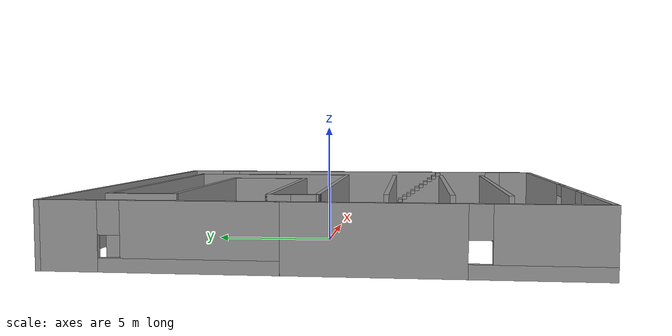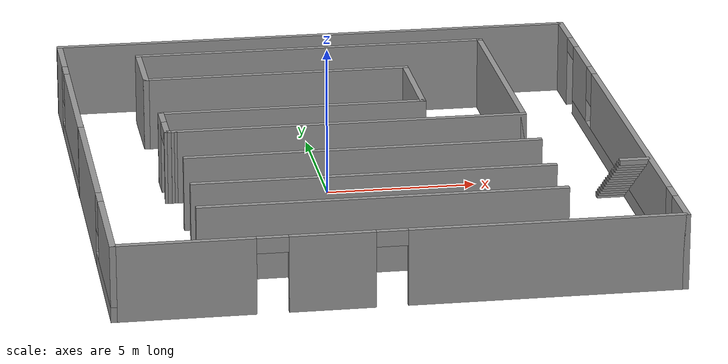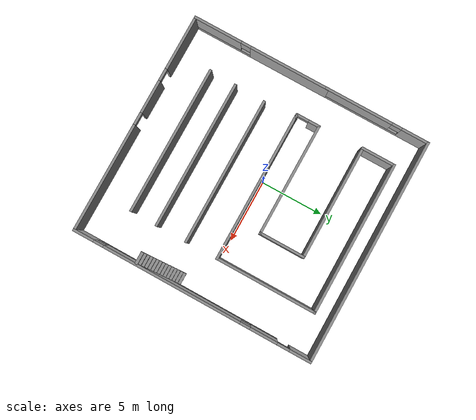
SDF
<?xml version='1.0'?>
<sdf version='1.4'>
  <model name='whouse'>
    <link name='Stairs_0'>
      <visual name='Stairs_0_Visual_0'>
        <pose>9.30541 -1.82192 0.083333 0 -0 0</pose>
        <geometry>
          <box>
            <size>1 0.233335 0.166668</size>
          </box>
        </geometry>
        <material>
          <script>
            <uri>file://media/materials/scripts/gazebo.material</uri>
            <name>Gazebo/Grey</name>
          </script>
        </material>
      </visual>
      <collision name='Stairs_0_Collision_0'>
        <geometry>
          <box>
            <size>1 0.233335 0.166668</size>
          </box>
        </geometry>
        <pose>9.30541 -1.82192 0.083333 0 -0 0</pose>
      </collision>
      <visual name='Stairs_0_Visual_1'>
        <pose>9.30541 -2.05525 0.25 0 -0 0</pose>
        <geometry>
          <box>
            <size>1 0.233335 0.166668</size>
          </box>
        </geometry>
        <material>
          <script>
            <uri>file://media/materials/scripts/gazebo.material</uri>
            <name>Gazebo/Grey</name>
          </script>
        </material>
      </visual>
      <collision name='Stairs_0_Collision_1'>
        <geometry>
          <box>
            <size>1 0.233335 0.166668</size>
          </box>
        </geometry>
        <pose>9.30541 -2.05525 0.25 0 -0 0</pose>
      </collision>
      <visual name='Stairs_0_Visual_2'>
        <pose>9.30541 -2.28858 0.416667 0 -0 0</pose>
        <geometry>
          <box>
            <size>1 0.233335 0.166668</size>
          </box>
        </geometry>
        <material>
          <script>
            <uri>file://media/materials/scripts/gazebo.material</uri>
            <name>Gazebo/Grey</name>
          </script>
        </material>
      </visual>
      <collision name='Stairs_0_Collision_2'>
        <geometry>
          <box>
            <size>1 0.233335 0.166668</size>
          </box>
        </geometry>
        <pose>9.30541 -2.28858 0.416667 0 -0 0</pose>
      </collision>
      <visual name='Stairs_0_Visual_3'>
        <pose>9.30541 -2.52192 0.583333 0 -0 0</pose>
        <geometry>
          <box>
            <size>1 0.233335 0.166668</size>
          </box>
        </geometry>
        <material>
          <script>
            <uri>file://media/materials/scripts/gazebo.material</uri>
            <name>Gazebo/Grey</name>
          </script>
        </material>
      </visual>
      <collision name='Stairs_0_Collision_3'>
        <geometry>
          <box>
            <size>1 0.233335 0.166668</size>
          </box>
        </geometry>
        <pose>9.30541 -2.52192 0.583333 0 -0 0</pose>
      </collision>
      <visual name='Stairs_0_Visual_4'>
        <pose>9.30541 -2.75525 0.75 0 -0 0</pose>
        <geometry>
          <box>
            <size>1 0.233335 0.166668</size>
          </box>
        </geometry>
        <material>
          <script>
            <uri>file://media/materials/scripts/gazebo.material</uri>
            <name>Gazebo/Grey</name>
          </script>
        </material>
      </visual>
      <collision name='Stairs_0_Collision_4'>
        <geometry>
          <box>
            <size>1 0.233335 0.166668</size>
          </box>
        </geometry>
        <pose>9.30541 -2.75525 0.75 0 -0 0</pose>
      </collision>
      <visual name='Stairs_0_Visual_5'>
        <pose>9.30541 -2.98858 0.916667 0 -0 0</pose>
        <geometry>
          <box>
            <size>1 0.233335 0.166668</size>
          </box>
        </geometry>
        <material>
          <script>
            <uri>file://media/materials/scripts/gazebo.material</uri>
            <name>Gazebo/Grey</name>
          </script>
        </material>
      </visual>
      <collision name='Stairs_0_Collision_5'>
        <geometry>
          <box>
            <size>1 0.233335 0.166668</size>
          </box>
        </geometry>
        <pose>9.30541 -2.98858 0.916667 0 -0 0</pose>
      </collision>
      <visual name='Stairs_0_Visual_6'>
        <pose>9.30541 -3.22192 1.08333 0 -0 0</pose>
        <geometry>
          <box>
            <size>1 0.233335 0.166668</size>
          </box>
        </geometry>
        <material>
          <script>
            <uri>file://media/materials/scripts/gazebo.material</uri>
            <name>Gazebo/Grey</name>
          </script>
        </material>
      </visual>
      <collision name='Stairs_0_Collision_6'>
        <geometry>
          <box>
            <size>1 0.233335 0.166668</size>
          </box>
        </geometry>
        <pose>9.30541 -3.22192 1.08333 0 -0 0</pose>
      </collision>
      <visual name='Stairs_0_Visual_7'>
        <pose>9.30541 -3.45525 1.25 0 -0 0</pose>
        <geometry>
          <box>
            <size>1 0.233335 0.166668</size>
          </box>
        </geometry>
        <material>
          <script>
            <uri>file://media/materials/scripts/gazebo.material</uri>
            <name>Gazebo/Grey</name>
          </script>
        </material>
      </visual>
      <collision name='Stairs_0_Collision_7'>
        <geometry>
          <box>
            <size>1 0.233335 0.166668</size>
          </box>
        </geometry>
        <pose>9.30541 -3.45525 1.25 0 -0 0</pose>
      </collision>
      <visual name='Stairs_0_Visual_8'>
        <pose>9.30541 -3.68858 1.41667 0 -0 0</pose>
        <geometry>
          <box>
            <size>1 0.233335 0.166668</size>
          </box>
        </geometry>
        <material>
          <script>
            <uri>file://media/materials/scripts/gazebo.material</uri>
            <name>Gazebo/Grey</name>
          </script>
        </material>
      </visual>
      <collision name='Stairs_0_Collision_8'>
        <geometry>
          <box>
            <size>1 0.233335 0.166668</size>
          </box>
        </geometry>
        <pose>9.30541 -3.68858 1.41667 0 -0 0</pose>
      </collision>
      <visual name='Stairs_0_Visual_9'>
        <pose>9.30541 -3.92192 1.58333 0 -0 0</pose>
        <geometry>
          <box>
            <size>1 0.233335 0.166668</size>
          </box>
        </geometry>
        <material>
          <script>
            <uri>file://media/materials/scripts/gazebo.material</uri>
            <name>Gazebo/Grey</name>
          </script>
        </material>
      </visual>
      <collision name='Stairs_0_Collision_9'>
        <geometry>
          <box>
            <size>1 0.233335 0.166668</size>
          </box>
        </geometry>
        <pose>9.30541 -3.92192 1.58333 0 -0 0</pose>
      </collision>
      <visual name='Stairs_0_Visual_10'>
        <pose>9.30541 -4.15525 1.75 0 -0 0</pose>
        <geometry>
          <box>
            <size>1 0.233335 0.166668</size>
          </box>
        </geometry>
        <material>
          <script>
            <uri>file://media/materials/scripts/gazebo.material</uri>
            <name>Gazebo/Grey</name>
          </script>
        </material>
      </visual>
      <collision name='Stairs_0_Collision_10'>
        <geometry>
          <box>
            <size>1 0.233335 0.166668</size>
          </box>
        </geometry>
        <pose>9.30541 -4.15525 1.75 0 -0 0</pose>
      </collision>
      <visual name='Stairs_0_Visual_11'>
        <pose>9.30541 -4.38858 1.91667 0 -0 0</pose>
        <geometry>
          <box>
            <size>1 0.233335 0.166668</size>
          </box>
        </geometry>
        <material>
          <script>
            <uri>file://media/materials/scripts/gazebo.material</uri>
            <name>Gazebo/Grey</name>
          </script>
        </material>
      </visual>
      <collision name='Stairs_0_Collision_11'>
        <geometry>
          <box>
            <size>1 0.233335 0.166668</size>
          </box>
        </geometry>
        <pose>9.30541 -4.38858 1.91667 0 -0 0</pose>
      </collision>
      <visual name='Stairs_0_Visual_12'>
        <pose>9.30541 -4.62192 2.08333 0 -0 0</pose>
        <geometry>
          <box>
            <size>1 0.233335 0.166668</size>
          </box>
        </geometry>
        <material>
          <script>
            <uri>file://media/materials/scripts/gazebo.material</uri>
            <name>Gazebo/Grey</name>
          </script>
        </material>
      </visual>
      <collision name='Stairs_0_Collision_12'>
        <geometry>
          <box>
            <size>1 0.233335 0.166668</size>
          </box>
        </geometry>
        <pose>9.30541 -4.62192 2.08333 0 -0 0</pose>
      </collision>
      <visual name='Stairs_0_Visual_13'>
        <pose>9.30541 -4.85525 2.25 0 -0 0</pose>
        <geometry>
          <box>
            <size>1 0.233335 0.166668</size>
          </box>
        </geometry>
        <material>
          <script>
            <uri>file://media/materials/scripts/gazebo.material</uri>
            <name>Gazebo/Grey</name>
          </script>
        </material>
      </visual>
      <collision name='Stairs_0_Collision_13'>
        <geometry>
          <box>
            <size>1 0.233335 0.166668</size>
          </box>
        </geometry>
        <pose>9.30541 -4.85525 2.25 0 -0 0</pose>
      </collision>
      <visual name='Stairs_0_Visual_14'>
        <pose>9.30541 -5.08858 2.41667 0 -0 0</pose>
        <geometry>
          <box>
            <size>1 0.233335 0.166668</size>
          </box>
        </geometry>
        <material>
          <script>
            <uri>file://media/materials/scripts/gazebo.material</uri>
            <name>Gazebo/Grey</name>
          </script>
        </material>
      </visual>
      <collision name='Stairs_0_Collision_14'>
        <geometry>
          <box>
            <size>1 0.233335 0.166668</size>
          </box>
        </geometry>
        <pose>9.30541 -5.08858 2.41667 0 -0 0</pose>
      </collision>
    </link>
    <link name='Wall_24'>
      <collision name='Wall_24_Collision'>
        <geometry>
          <box>
            <size>11.9322 0.2 2.5</size>
          </box>
        </geometry>
        <pose>0 0 1.25 0 -0 0</pose>
      </collision>
      <visual name='Wall_24_Visual'>
        <pose>0 0 1.25 0 -0 0</pose>
        <geometry>
          <box>
            <size>11.9322 0.2 2.5</size>
          </box>
        </geometry>
        <material>
          <script>
            <uri>file://media/materials/scripts/gazebo.material</uri>
            <name>Gazebo/Grey</name>
          </script>
        </material>
      </visual>
      <velocity_decay>
        <linear>0</linear>
        <angular>0</angular>
      </velocity_decay>
      <pose>0.724621 -7.3064 0 0 -0 0</pose>
    </link>
    <link name='Wall_26'>
      <collision name='Wall_26_Collision'>
        <geometry>
          <box>
            <size>11.9041 0.2 2.5</size>
          </box>
        </geometry>
        <pose>0 0 1.25 0 -0 0</pose>
      </collision>
      <visual name='Wall_26_Visual'>
        <pose>0 0 1.25 0 -0 0</pose>
        <geometry>
          <box>
            <size>11.9041 0.2 2.5</size>
          </box>
        </geometry>
        <material>
          <script>
            <uri>file://media/materials/scripts/gazebo.material</uri>
            <name>Gazebo/Grey</name>
          </script>
        </material>
      </visual>
      <velocity_decay>
        <linear>0</linear>
        <angular>0</angular>
      </velocity_decay>
      <pose>0.776272 -5.17892 0 0 -0 0</pose>
    </link>
    <link name='Wall_28'>
      <collision name='Wall_28_Collision'>
        <geometry>
          <box>
            <size>11.8509 0.2 2.5</size>
          </box>
        </geometry>
        <pose>0 0 1.25 0 -0 0</pose>
      </collision>
      <visual name='Wall_28_Visual'>
        <pose>0 0 1.25 0 -0 0</pose>
        <geometry>
          <box>
            <size>11.8509 0.2 2.5</size>
          </box>
        </geometry>
        <material>
          <script>
            <uri>file://media/materials/scripts/gazebo.material</uri>
            <name>Gazebo/Grey</name>
          </script>
        </material>
      </visual>
      <velocity_decay>
        <linear>0</linear>
        <angular>0</angular>
      </velocity_decay>
      <pose>0.802873 -2.7317 0 0 -0 0</pose>
    </link>
    <link name='Wall_3'>
      <pose>-8.13557 -4.65606 0 0 0 -1.5708</pose>
      <visual name='Wall_3_Visual_0'>
        <pose>-2.38773 0 1.25 0 -0 0</pose>
        <geometry>
          <box>
            <size>6.54185 0.2 2.5</size>
          </box>
        </geometry>
        <material>
          <script>
            <uri>file://media/materials/scripts/gazebo.material</uri>
            <name>Gazebo/Grey</name>
          </script>
        </material>
      </visual>
      <collision name='Wall_3_Collision_0'>
        <geometry>
          <box>
            <size>6.54185 0.2 2.5</size>
          </box>
        </geometry>
        <pose>-2.38773 0 1.25 0 -0 0</pose>
      </collision>
      <visual name='Wall_3_Visual_1'>
        <pose>3.27092 0 0.25 0 -0 0</pose>
        <geometry>
          <box>
            <size>4.77546 0.2 0.5</size>
          </box>
        </geometry>
        <material>
          <script>
            <uri>file://media/materials/scripts/gazebo.material</uri>
            <name>Gazebo/Grey</name>
          </script>
        </material>
      </visual>
      <collision name='Wall_3_Collision_1'>
        <geometry>
          <box>
            <size>4.77546 0.2 0.5</size>
          </box>
        </geometry>
        <pose>3.27092 0 0.25 0 -0 0</pose>
      </collision>
      <visual name='Wall_3_Visual_2'>
        <pose>3.67092 0 1.5 0 -0 0</pose>
        <geometry>
          <box>
            <size>3.97546 0.2 2</size>
          </box>
        </geometry>
        <material>
          <script>
            <uri>file://media/materials/scripts/gazebo.material</uri>
            <name>Gazebo/Grey</name>
          </script>
        </material>
      </visual>
      <collision name='Wall_3_Collision_2'>
        <geometry>
          <box>
            <size>3.97546 0.2 2</size>
          </box>
        </geometry>
        <pose>3.67092 0 1.5 0 -0 0</pose>
      </collision>
      <visual name='Wall_3_Visual_3'>
        <pose>1.2832 0 1.9 0 -0 0</pose>
        <geometry>
          <box>
            <size>0.8 0.2 1.2</size>
          </box>
        </geometry>
        <material>
          <script>
            <uri>file://media/materials/scripts/gazebo.material</uri>
            <name>Gazebo/Grey</name>
          </script>
        </material>
      </visual>
      <collision name='Wall_3_Collision_3'>
        <geometry>
          <box>
            <size>0.8 0.2 1.2</size>
          </box>
        </geometry>
        <pose>1.2832 0 1.9 0 -0 0</pose>
      </collision>
    </link>
    <link name='Wall_4'>
      <pose>0.844676 -10.2147 0 0 -0 0</pose>
      <visual name='Wall_4_Visual_0'>
        <pose>-6.81576 0 1.25 0 -0 0</pose>
        <geometry>
          <box>
            <size>4.52898 0.2 2.5</size>
          </box>
        </geometry>
        <material>
          <script>
            <uri>file://media/materials/scripts/gazebo.material</uri>
            <name>Gazebo/Grey</name>
          </script>
        </material>
      </visual>
      <collision name='Wall_4_Collision_0'>
        <geometry>
          <box>
            <size>4.52898 0.2 2.5</size>
          </box>
        </geometry>
        <pose>-6.81576 0 1.25 0 -0 0</pose>
      </collision>
      <visual name='Wall_4_Visual_1'>
        <pose>-2.18826 0 1.25 0 -0 0</pose>
        <geometry>
          <box>
            <size>2.726 0.2 2.5</size>
          </box>
        </geometry>
        <material>
          <script>
            <uri>file://media/materials/scripts/gazebo.material</uri>
            <name>Gazebo/Grey</name>
          </script>
        </material>
      </visual>
      <collision name='Wall_4_Collision_1'>
        <geometry>
          <box>
            <size>2.726 0.2 2.5</size>
          </box>
        </geometry>
        <pose>-2.18826 0 1.25 0 -0 0</pose>
      </collision>
      <visual name='Wall_4_Visual_2'>
        <pose>4.62749 0 1.25 0 -0 0</pose>
        <geometry>
          <box>
            <size>8.90551 0.2 2.5</size>
          </box>
        </geometry>
        <material>
          <script>
            <uri>file://media/materials/scripts/gazebo.material</uri>
            <name>Gazebo/Grey</name>
          </script>
        </material>
      </visual>
      <collision name='Wall_4_Collision_2'>
        <geometry>
          <box>
            <size>8.90551 0.2 2.5</size>
          </box>
        </geometry>
        <pose>4.62749 0 1.25 0 -0 0</pose>
      </collision>
      <visual name='Wall_4_Visual_3'>
        <pose>-4.05126 0 2.25 0 -0 0</pose>
        <geometry>
          <box>
            <size>1 0.2 0.5</size>
          </box>
        </geometry>
        <material>
          <script>
            <uri>file://media/materials/scripts/gazebo.material</uri>
            <name>Gazebo/Grey</name>
          </script>
        </material>
      </visual>
      <collision name='Wall_4_Collision_3'>
        <geometry>
          <box>
            <size>1 0.2 0.5</size>
          </box>
        </geometry>
        <pose>-4.05126 0 2.25 0 -0 0</pose>
      </collision>
      <visual name='Wall_4_Visual_4'>
        <pose>-0.325265 0 2.25 0 -0 0</pose>
        <geometry>
          <box>
            <size>1 0.2 0.5</size>
          </box>
        </geometry>
        <material>
          <script>
            <uri>file://media/materials/scripts/gazebo.material</uri>
            <name>Gazebo/Grey</name>
          </script>
        </material>
      </visual>
      <collision name='Wall_4_Collision_4'>
        <geometry>
          <box>
            <size>1 0.2 0.5</size>
          </box>
        </geometry>
        <pose>-0.325265 0 2.25 0 -0 0</pose>
      </collision>
    </link>
    <link name='Wall_40'>
      <collision name='Wall_40_Collision'>
        <geometry>
          <box>
            <size>11.9503 0.2 2.5</size>
          </box>
        </geometry>
        <pose>0 0 1.25 0 -0 0</pose>
      </collision>
      <visual name='Wall_40_Visual'>
        <pose>0 0 1.25 0 -0 0</pose>
        <geometry>
          <box>
            <size>11.9503 0.2 2.5</size>
          </box>
        </geometry>
        <material>
          <script>
            <uri>file://media/materials/scripts/gazebo.material</uri>
            <name>Gazebo/Grey</name>
          </script>
        </material>
      </visual>
      <velocity_decay>
        <linear>0</linear>
        <angular>0</angular>
      </velocity_decay>
      <pose>0.735923 -0.172104 0 0 -0 0</pose>
    </link>
    <link name='Wall_41'>
      <collision name='Wall_41_Collision'>
        <geometry>
          <box>
            <size>8.20319 0.2 2.5</size>
          </box>
        </geometry>
        <pose>0 0 1.25 0 -0 0</pose>
      </collision>
      <visual name='Wall_41_Visual'>
        <pose>0 0 1.25 0 -0 0</pose>
        <geometry>
          <box>
            <size>8.20319 0.2 2.5</size>
          </box>
        </geometry>
        <material>
          <script>
            <uri>file://media/materials/scripts/gazebo.material</uri>
            <name>Gazebo/Grey</name>
          </script>
        </material>
      </visual>
      <velocity_decay>
        <linear>0</linear>
        <angular>0</angular>
      </velocity_decay>
      <pose>6.6111 3.82949 0 0 -0 1.5708</pose>
    </link>
    <link name='Wall_42'>
      <collision name='Wall_42_Collision'>
        <geometry>
          <box>
            <size>12.3204 0.2 2.5</size>
          </box>
        </geometry>
        <pose>0 0 1.25 0 -0 0</pose>
      </collision>
      <visual name='Wall_42_Visual'>
        <pose>0 0 1.25 0 -0 0</pose>
        <geometry>
          <box>
            <size>12.3204 0.2 2.5</size>
          </box>
        </geometry>
        <material>
          <script>
            <uri>file://media/materials/scripts/gazebo.material</uri>
            <name>Gazebo/Grey</name>
          </script>
        </material>
      </visual>
      <velocity_decay>
        <linear>0</linear>
        <angular>0</angular>
      </velocity_decay>
      <pose>0.550878 7.83109 0 0 -0 3.14159</pose>
    </link>
    <link name='Wall_43'>
      <collision name='Wall_43_Collision'>
        <geometry>
          <box>
            <size>2.79063 0.2 2.5</size>
          </box>
        </geometry>
        <pose>0 0 1.25 0 -0 0</pose>
      </collision>
      <visual name='Wall_43_Visual'>
        <pose>0 0 1.25 0 -0 0</pose>
        <geometry>
          <box>
            <size>2.79063 0.2 2.5</size>
          </box>
        </geometry>
        <material>
          <script>
            <uri>file://media/materials/scripts/gazebo.material</uri>
            <name>Gazebo/Grey</name>
          </script>
        </material>
      </visual>
      <velocity_decay>
        <linear>0</linear>
        <angular>0</angular>
      </velocity_decay>
      <pose>-5.50934 6.53577 0 0 0 -1.5708</pose>
    </link>
    <link name='Wall_44'>
      <collision name='Wall_44_Collision'>
        <geometry>
          <box>
            <size>9.22094 0.2 2.5</size>
          </box>
        </geometry>
        <pose>0 0 1.25 0 -0 0</pose>
      </collision>
      <visual name='Wall_44_Visual'>
        <pose>0 0 1.25 0 -0 0</pose>
        <geometry>
          <box>
            <size>9.22094 0.2 2.5</size>
          </box>
        </geometry>
        <material>
          <script>
            <uri>file://media/materials/scripts/gazebo.material</uri>
            <name>Gazebo/Grey</name>
          </script>
        </material>
      </visual>
      <velocity_decay>
        <linear>0</linear>
        <angular>0</angular>
      </velocity_decay>
      <pose>-0.998872 5.24046 0 0 -0 0</pose>
    </link>
    <link name='Wall_45'>
      <collision name='Wall_45_Collision'>
        <geometry>
          <box>
            <size>3.76211 0.2 2.5</size>
          </box>
        </geometry>
        <pose>0 0 1.25 0 -0 0</pose>
      </collision>
      <visual name='Wall_45_Visual'>
        <pose>0 0 1.25 0 -0 0</pose>
        <geometry>
          <box>
            <size>3.76211 0.2 2.5</size>
          </box>
        </geometry>
        <material>
          <script>
            <uri>file://media/materials/scripts/gazebo.material</uri>
            <name>Gazebo/Grey</name>
          </script>
        </material>
      </visual>
      <velocity_decay>
        <linear>0</linear>
        <angular>0</angular>
      </velocity_decay>
      <pose>3.5116 3.4594 0 0 0 -1.5708</pose>
    </link>
    <link name='Wall_46'>
      <collision name='Wall_46_Collision'>
        <geometry>
          <box>
            <size>9.08215 0.2 2.5</size>
          </box>
        </geometry>
        <pose>0 0 1.25 0 -0 0</pose>
      </collision>
      <visual name='Wall_46_Visual'>
        <pose>0 0 1.25 0 -0 0</pose>
        <geometry>
          <box>
            <size>9.08215 0.2 2.5</size>
          </box>
        </geometry>
        <material>
          <script>
            <uri>file://media/materials/scripts/gazebo.material</uri>
            <name>Gazebo/Grey</name>
          </script>
        </material>
      </visual>
      <velocity_decay>
        <linear>0</linear>
        <angular>0</angular>
      </velocity_decay>
      <pose>-0.929481 1.67834 0 0 -0 3.14159</pose>
    </link>
    <link name='Wall_47'>
      <pose>-5.37056 0.76186 0 0 0 -1.5708</pose>
      <visual name='Wall_47_Visual_0'>
        <pose>-0.535688 0 1.25 0 -0 0</pose>
        <geometry>
          <box>
            <size>0.961595 0.2 2.5</size>
          </box>
        </geometry>
        <material>
          <script>
            <uri>file://media/materials/scripts/gazebo.material</uri>
            <name>Gazebo/Grey</name>
          </script>
        </material>
      </visual>
      <collision name='Wall_47_Collision_0'>
        <geometry>
          <box>
            <size>0.961595 0.2 2.5</size>
          </box>
        </geometry>
        <pose>-0.535688 0 1.25 0 -0 0</pose>
      </collision>
      <visual name='Wall_47_Visual_1'>
        <pose>0.980797 0 1.25 0 -0 0</pose>
        <geometry>
          <box>
            <size>0.071375 0.2 2.5</size>
          </box>
        </geometry>
        <material>
          <script>
            <uri>file://media/materials/scripts/gazebo.material</uri>
            <name>Gazebo/Grey</name>
          </script>
        </material>
      </visual>
      <collision name='Wall_47_Collision_1'>
        <geometry>
          <box>
            <size>0.071375 0.2 2.5</size>
          </box>
        </geometry>
        <pose>0.980797 0 1.25 0 -0 0</pose>
      </collision>
      <visual name='Wall_47_Visual_2'>
        <pose>0.44511 0 2.25 0 -0 0</pose>
        <geometry>
          <box>
            <size>1 0.2 0.5</size>
          </box>
        </geometry>
        <material>
          <script>
            <uri>file://media/materials/scripts/gazebo.material</uri>
            <name>Gazebo/Grey</name>
          </script>
        </material>
      </visual>
      <collision name='Wall_47_Collision_2'>
        <geometry>
          <box>
            <size>1 0.2 0.5</size>
          </box>
        </geometry>
        <pose>0.44511 0 2.25 0 -0 0</pose>
      </collision>
    </link>
    <link name='Wall_48'>
      <collision name='Wall_48_Collision'>
        <geometry>
          <box>
            <size>0.431966 0.2 2.5</size>
          </box>
        </geometry>
        <pose>0 0 1.25 0 -0 0</pose>
      </collision>
      <visual name='Wall_48_Visual'>
        <pose>0 0 1.25 0 -0 0</pose>
        <geometry>
          <box>
            <size>0.431966 0.2 2.5</size>
          </box>
        </geometry>
        <material>
          <script>
            <uri>file://media/materials/scripts/gazebo.material</uri>
            <name>Gazebo/Grey</name>
          </script>
        </material>
      </visual>
      <velocity_decay>
        <linear>0</linear>
        <angular>0</angular>
      </velocity_decay>
      <pose>-5.2549 -0.163365 0 0 0 -0.075425</pose>
    </link>
    <link name='Wall_5'>
      <pose>9.82493 -0.490897 0 0 -0 1.5708</pose>
      <visual name='Wall_5_Visual_0'>
        <pose>-8.96308 0 1.25 0 -0 0</pose>
        <geometry>
          <box>
            <size>1.72145 0.2 2.5</size>
          </box>
        </geometry>
        <material>
          <script>
            <uri>file://media/materials/scripts/gazebo.material</uri>
            <name>Gazebo/Grey</name>
          </script>
        </material>
      </visual>
      <collision name='Wall_5_Collision_0'>
        <geometry>
          <box>
            <size>1.72145 0.2 2.5</size>
          </box>
        </geometry>
        <pose>-8.96308 0 1.25 0 -0 0</pose>
      </collision>
      <visual name='Wall_5_Visual_1'>
        <pose>8.92372 0 1.25 0 -0 0</pose>
        <geometry>
          <box>
            <size>1.80015 0.2 2.5</size>
          </box>
        </geometry>
        <material>
          <script>
            <uri>file://media/materials/scripts/gazebo.material</uri>
            <name>Gazebo/Grey</name>
          </script>
        </material>
      </visual>
      <collision name='Wall_5_Collision_1'>
        <geometry>
          <box>
            <size>1.80015 0.2 2.5</size>
          </box>
        </geometry>
        <pose>8.92372 0 1.25 0 -0 0</pose>
      </collision>
      <visual name='Wall_5_Visual_2'>
        <pose>-0.539353 0 0.25 0 -0 0</pose>
        <geometry>
          <box>
            <size>15.126 0.2 0.5</size>
          </box>
        </geometry>
        <material>
          <script>
            <uri>file://media/materials/scripts/gazebo.material</uri>
            <name>Gazebo/Grey</name>
          </script>
        </material>
      </visual>
      <collision name='Wall_5_Collision_2'>
        <geometry>
          <box>
            <size>15.126 0.2 0.5</size>
          </box>
        </geometry>
        <pose>-0.539353 0 0.25 0 -0 0</pose>
      </collision>
      <visual name='Wall_5_Visual_3'>
        <pose>-1.65335 0 1.5 0 -0 0</pose>
        <geometry>
          <box>
            <size>11.298 0.2 2</size>
          </box>
        </geometry>
        <material>
          <script>
            <uri>file://media/materials/scripts/gazebo.material</uri>
            <name>Gazebo/Grey</name>
          </script>
        </material>
      </visual>
      <collision name='Wall_5_Collision_3'>
        <geometry>
          <box>
            <size>11.298 0.2 2</size>
          </box>
        </geometry>
        <pose>-1.65335 0 1.5 0 -0 0</pose>
      </collision>
      <visual name='Wall_5_Visual_4'>
        <pose>5.90965 0 1.5 0 -0 0</pose>
        <geometry>
          <box>
            <size>2.228 0.2 2</size>
          </box>
        </geometry>
        <material>
          <script>
            <uri>file://media/materials/scripts/gazebo.material</uri>
            <name>Gazebo/Grey</name>
          </script>
        </material>
      </visual>
      <collision name='Wall_5_Collision_4'>
        <geometry>
          <box>
            <size>2.228 0.2 2</size>
          </box>
        </geometry>
        <pose>5.90965 0 1.5 0 -0 0</pose>
      </collision>
      <visual name='Wall_5_Visual_5'>
        <pose>-7.70235 0 1.9 0 -0 0</pose>
        <geometry>
          <box>
            <size>0.8 0.2 1.2</size>
          </box>
        </geometry>
        <material>
          <script>
            <uri>file://media/materials/scripts/gazebo.material</uri>
            <name>Gazebo/Grey</name>
          </script>
        </material>
      </visual>
      <collision name='Wall_5_Collision_5'>
        <geometry>
          <box>
            <size>0.8 0.2 1.2</size>
          </box>
        </geometry>
        <pose>-7.70235 0 1.9 0 -0 0</pose>
      </collision>
      <visual name='Wall_5_Visual_6'>
        <pose>4.39565 0 1.9 0 -0 0</pose>
        <geometry>
          <box>
            <size>0.8 0.2 1.2</size>
          </box>
        </geometry>
        <material>
          <script>
            <uri>file://media/materials/scripts/gazebo.material</uri>
            <name>Gazebo/Grey</name>
          </script>
        </material>
      </visual>
      <collision name='Wall_5_Collision_6'>
        <geometry>
          <box>
            <size>0.8 0.2 1.2</size>
          </box>
        </geometry>
        <pose>4.39565 0 1.9 0 -0 0</pose>
      </collision>
      <visual name='Wall_5_Visual_7'>
        <pose>7.52365 0 2.25 0 -0 0</pose>
        <geometry>
          <box>
            <size>1 0.2 0.5</size>
          </box>
        </geometry>
        <material>
          <script>
            <uri>file://media/materials/scripts/gazebo.material</uri>
            <name>Gazebo/Grey</name>
          </script>
        </material>
      </visual>
      <collision name='Wall_5_Collision_7'>
        <geometry>
          <box>
            <size>1 0.2 0.5</size>
          </box>
        </geometry>
        <pose>7.52365 0 2.25 0 -0 0</pose>
      </collision>
    </link>
    <link name='Wall_6'>
      <collision name='Wall_6_Collision'>
        <geometry>
          <box>
            <size>18.1687 0.2 2.5</size>
          </box>
        </geometry>
        <pose>0 0 1.25 0 -0 0</pose>
      </collision>
      <visual name='Wall_6_Visual'>
        <pose>0 0 1.25 0 -0 0</pose>
        <geometry>
          <box>
            <size>18.1687 0.2 2.5</size>
          </box>
        </geometry>
        <material>
          <script>
            <uri>file://media/materials/scripts/gazebo.material</uri>
            <name>Gazebo/Grey</name>
          </script>
        </material>
      </visual>
      <velocity_decay>
        <linear>0</linear>
        <angular>0</angular>
      </velocity_decay>
      <pose>0.840595 9.23289 0 0 -0 3.14159</pose>
    </link>
    <link name='Wall_7'>
      <pose>-8.14374 5.02583 0 0 0 -1.5708</pose>
      <visual name='Wall_7_Visual_0'>
        <pose>-3.17299 0 1.25 0 -0 0</pose>
        <geometry>
          <box>
            <size>2.26814 0.2 2.5</size>
          </box>
        </geometry>
        <material>
          <script>
            <uri>file://media/materials/scripts/gazebo.material</uri>
            <name>Gazebo/Grey</name>
          </script>
        </material>
      </visual>
      <collision name='Wall_7_Collision_0'>
        <geometry>
          <box>
            <size>2.26814 0.2 2.5</size>
          </box>
        </geometry>
        <pose>-3.17299 0 1.25 0 -0 0</pose>
      </collision>
      <visual name='Wall_7_Visual_1'>
        <pose>1.13407 0 0.25 0 -0 0</pose>
        <geometry>
          <box>
            <size>6.34598 0.2 0.5</size>
          </box>
        </geometry>
        <material>
          <script>
            <uri>file://media/materials/scripts/gazebo.material</uri>
            <name>Gazebo/Grey</name>
          </script>
        </material>
      </visual>
      <collision name='Wall_7_Collision_1'>
        <geometry>
          <box>
            <size>6.34598 0.2 0.5</size>
          </box>
        </geometry>
        <pose>1.13407 0 0.25 0 -0 0</pose>
      </collision>
      <visual name='Wall_7_Visual_2'>
        <pose>1.53407 0 1.5 0 -0 0</pose>
        <geometry>
          <box>
            <size>5.54598 0.2 2</size>
          </box>
        </geometry>
        <material>
          <script>
            <uri>file://media/materials/scripts/gazebo.material</uri>
            <name>Gazebo/Grey</name>
          </script>
        </material>
      </visual>
      <collision name='Wall_7_Collision_2'>
        <geometry>
          <box>
            <size>5.54598 0.2 2</size>
          </box>
        </geometry>
        <pose>1.53407 0 1.5 0 -0 0</pose>
      </collision>
      <visual name='Wall_7_Visual_3'>
        <pose>-1.63892 0 1.9 0 -0 0</pose>
        <geometry>
          <box>
            <size>0.8 0.2 1.2</size>
          </box>
        </geometry>
        <material>
          <script>
            <uri>file://media/materials/scripts/gazebo.material</uri>
            <name>Gazebo/Grey</name>
          </script>
        </material>
      </visual>
      <collision name='Wall_7_Collision_3'>
        <geometry>
          <box>
            <size>0.8 0.2 1.2</size>
          </box>
        </geometry>
        <pose>-1.63892 0 1.9 0 -0 0</pose>
      </collision>
    </link>
    <static>1</static>
  </model>
</sdf>
